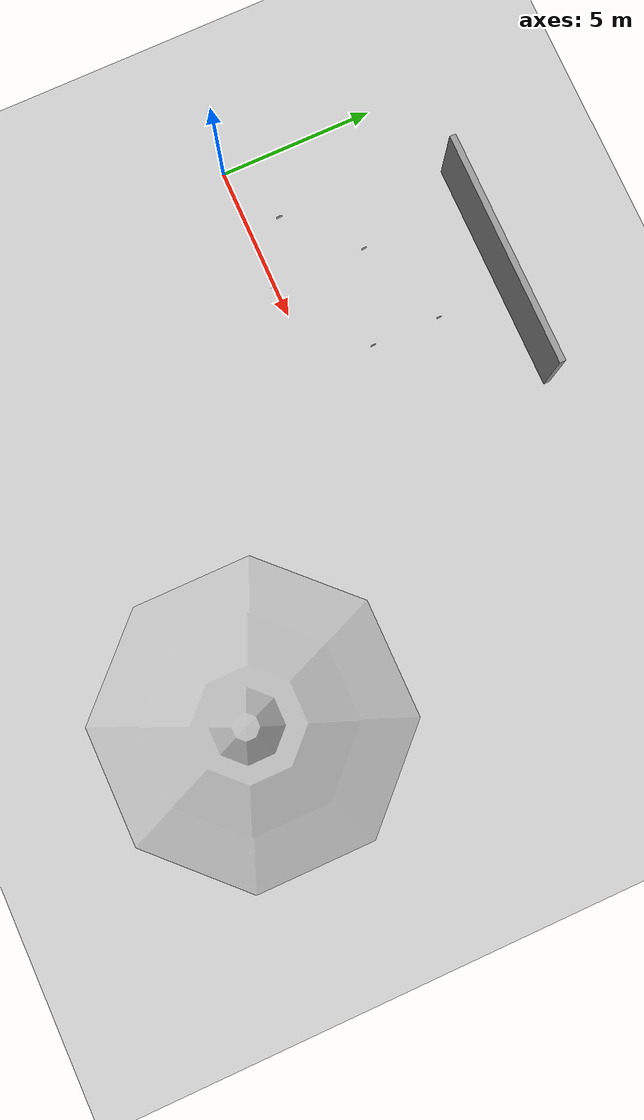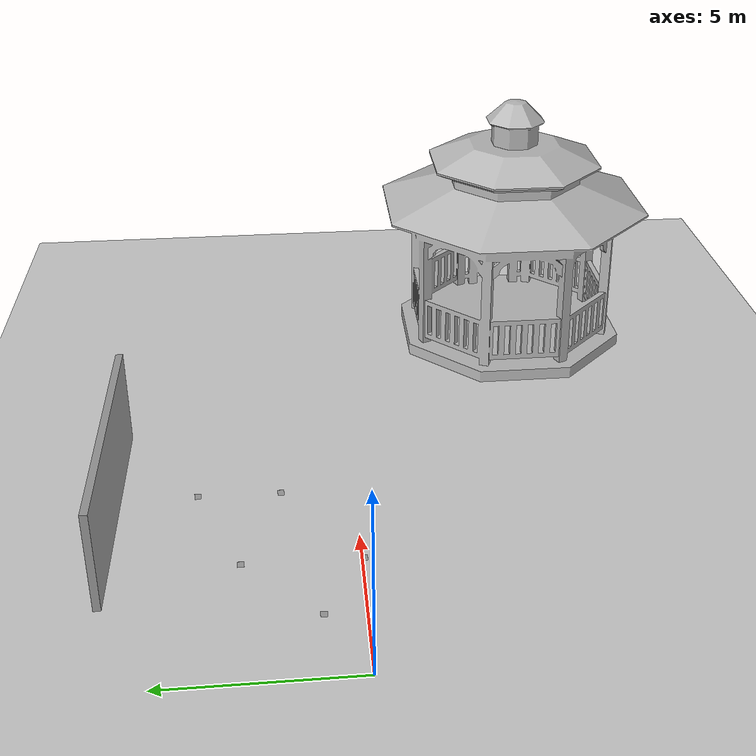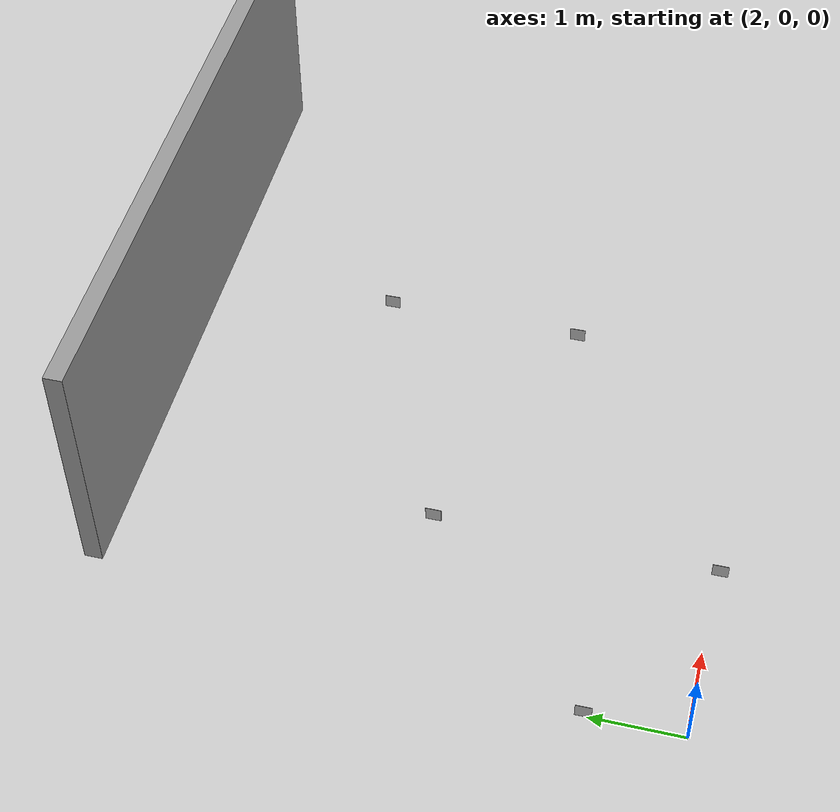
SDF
<sdf version="1.6">
 <world name="default">
  <light name="sun" type="directional">
   <pose>0 0 10 0 -0 0</pose>
   <diffuse>0.8 0.8 0.8 1</diffuse>
   <specular>0.2 0.2 0.2 1</specular>
   <attenuation>
    <range>1000</range>
    <constant>0.9</constant>
    <linear>0.01</linear>
    <quadratic>0.001</quadratic>
   </attenuation>
   <direction>-0.5 0.1 -0.9</direction>
  </light>
  <model name="ground_plane">
   <static>1</static>
   <link name="link">
    <collision name="collision">
     <geometry><plane><normal>0 0 1</normal><size>100 100</size></plane></geometry>
     <surface><friction><ode><mu>100</mu><mu2>50</mu2></ode></friction></surface>
    </collision>
    <visual name="visual">
     <cast_shadows>0</cast_shadows>
     <geometry><plane><normal>0 0 1</normal><size>100 100</size></plane></geometry>
     <material>
      <script><uri>file://media/materials/scripts/gazebo.material</uri><name>Gazebo/Grey</name></script>
     </material>
    </visual>
   </link>
  </model>
  <gravity>0 0 -9.8</gravity>
  <magnetic_field>6e-06 2.3e-05 -4.2e-05</magnetic_field>
  <atmosphere type="adiabatic"/>
  <physics name="default_physics" default="0" type="ode">
   <max_step_size>0.001</max_step_size>
   <real_time_factor>1</real_time_factor>
   <real_time_update_rate>1000</real_time_update_rate>
  </physics>
  <scene><ambient>0.4 0.4 0.4 1</ambient><background>0.7 0.7 0.7 1</background><shadows>1</shadows></scene>
  <audio><device>default</device></audio>
  <spherical_coordinates>
   <surface_model>EARTH_WGS84</surface_model>
   <latitude_deg>0</latitude_deg>
   <longitude_deg>0</longitude_deg>
   <elevation>0</elevation>
   <heading_deg>0</heading_deg>
  </spherical_coordinates>
  <model name="Marker0">
   <static>1</static>
   <link name="link">
    <visual name="visual">
     <geometry>
      <mesh><uri>model://marker0/meshes/Marker0.dae</uri><scale>0.346 0.346 0.346</scale></mesh>
     </geometry>
    </visual>
   </link>
   <pose>2.00705 1.03958 0 0 -0 0</pose>
  </model>
  <model name="Marker1">
   <static>1</static>
   <link name="link">
    <visual name="visual">
     <geometry>
      <mesh><uri>model://marker1/meshes/Marker1.dae</uri><scale>0.346 0.346 0.346</scale></mesh>
     </geometry>
    </visual>
   </link>
   <pose>3.99291 -0.047411 0 0 -0 0</pose>
  </model>
  <model name="Marker2">
   <static>1</static>
   <link name="link">
    <visual name="visual">
     <geometry>
      <mesh><uri>model://marker2/meshes/Marker2.dae</uri><scale>0.346 0.346 0.346</scale></mesh>
     </geometry>
    </visual>
   </link>
   <pose>4.02401 3.03441 0 0 -0 0</pose>
  </model>
  <model name="Marker3">
   <static>1</static>
   <link name="link">
    <visual name="visual">
     <geometry>
      <mesh><uri>model://marker3/meshes/Marker3.dae</uri><scale>0.346 0.346 0.346</scale></mesh>
     </geometry>
    </visual>
   </link>
   <pose>6.99283 4.23985 0 0 -0 0</pose>
  </model>
  <model name="Marker4">
   <static>1</static>
   <link name="link">
    <visual name="visual">
     <geometry>
      <mesh><uri>model://marker4/meshes/Marker4.dae</uri><scale>0.346 0.346 0.346</scale></mesh>
     </geometry>
    </visual>
   </link>
   <pose>6.96556 2.01308 0 0 -0 0</pose>
  </model>
  <model name="grey_wall">
   <static>1</static>
   <link name="link">
    <pose>0 0 1.4 0 -0 0</pose>
    <collision name="collision"><geometry><box><size>7.5 0.2 2.8</size></box></geometry></collision>
    <visual name="visual">
     <cast_shadows>0</cast_shadows>
     <geometry><box><size>7.5 0.2 2.8</size></box></geometry>
     <material>
      <script>
       <uri>model://grey_wall/materials/scripts</uri>
       <uri>model://grey_wall/materials/textures</uri>
       <name>vrc/grey_wall</name>
      </script>
     </material>
    </visual>
   </link>
   <pose>6.46814 6.39945 0 0 -0 0</pose>
  </model>
  <model name="gazebo">
   <static>1</static>
   <link name="link">
    <collision name="collision">
     <geometry><mesh><scale>3 3 2.5</scale><uri>model://gazebo/meshes/gazebo.dae</uri></mesh></geometry>
    </collision>
    <visual name="visual">
     <geometry><mesh><scale>3 3 2.5</scale><uri>model://gazebo/meshes/gazebo.dae</uri></mesh></geometry>
    </visual>
   </link>
   <pose>15.8908 -5.74135 0 0 -0 0</pose>
  </model>
 </world>
</sdf>
